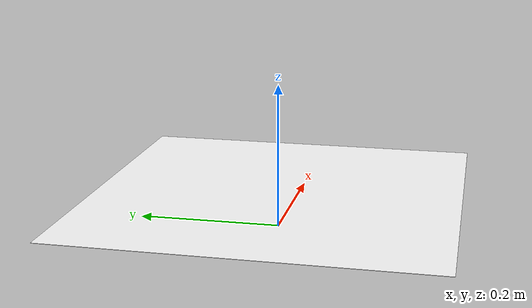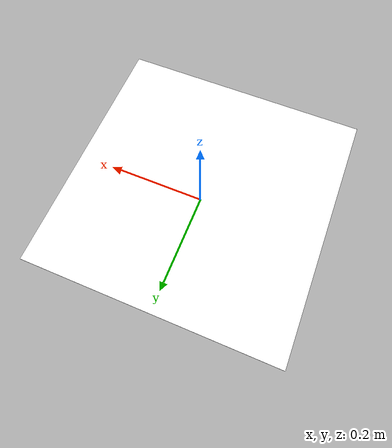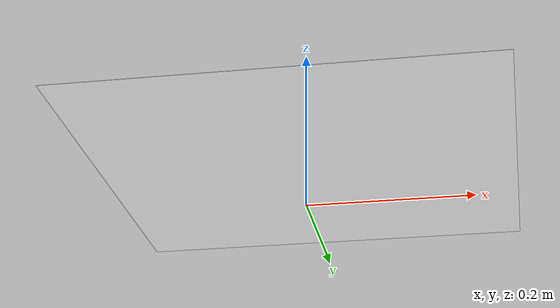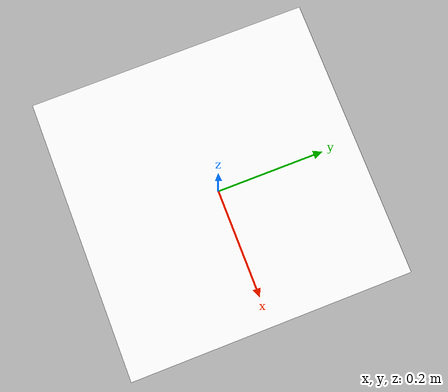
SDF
<?xml version="1.0" encoding="UTF-8"?>
<sdf version='1.9'>
  <model name='arucotag'>
    <static>true</static>
    <pose>0 0 0.05 0 0 0</pose>  <!-- Modificato da 0.001 a 0.05 -->
    <link name='base'>
      <visual name='base_visual'>
        <geometry>
          <plane>
            <normal>0 0 1</normal>
            <size>0.5 0.5</size>
          </plane>
        </geometry>
        <material>
          <diffuse>1 1 1 1</diffuse>
          <specular>0.4 0.4 0.4 1</specular>
          <pbr>
            <metal>
              <albedo_map>model://arucotag/arucotag.png</albedo_map>
            </metal>
          </pbr>
        </material>
      </visual>
    </link>
  </model>
</sdf>
